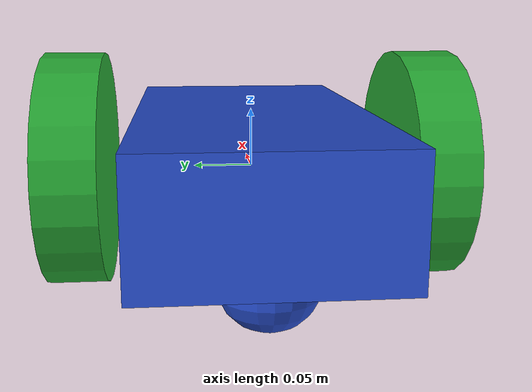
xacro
<?xml version='1.0'?>

<robot name="my_robot" xmlns:xacro="http://www.ros.org/wiki/xacro">

  <xacro:include filename="$(find my_robot)/urdf/my_robot.gazebo"/>

  <link name="robot_footprint"></link>

  <joint name="robot_footprint_joint" type="fixed">
    <origin xyz="0 0 0" rpy="0 0 0" />
    <parent link="robot_footprint"/>
    <child link="chassis" />
  </joint>

  <link name='chassis'>
    <pose>0 0 0.1 0 0 0</pose>

    <inertial>
      <mass value="15.0"/>
      <origin xyz="0.0 0 0" rpy=" 0 0 0"/>
      <inertia ixx="0.1" ixy="0" ixz="0" iyy="0.1" iyz="0" izz="0.1" />
    </inertial>

    <collision name='collision'>
      <origin xyz="0 0 0" rpy=" 0 0 0"/>
      <geometry>
        <box size=".4 .2 .1"/>
      </geometry>
    </collision>

    <visual name='chassis_visual'>
      <origin xyz="0 0 0" rpy=" 0 0 0"/>
      <geometry>
        <box size=".4 .2 .1"/>
      </geometry>
    </visual>

    <collision name='back_caster_collision'>
      <origin xyz="-0.15 0 -0.05" rpy=" 0 0 0"/>
      <geometry>
        <sphere radius="0.04"/>
      </geometry>
    </collision>

    <visual name='back_caster_visual'>
      <origin xyz="-0.15 0 -0.05" rpy=" 0 0 0"/>
      <geometry>
        <sphere radius="0.04"/>
      </geometry>
    </visual>

    <collision name='front_caster_collision'>
      <origin xyz="0.15 0 -0.05" rpy=" 0 0 0"/>
      <geometry>
        <sphere radius="0.04"/>
      </geometry>
    </collision>

    <visual name='front_caster_visual'>
      <origin xyz="0.15 0 -0.05" rpy=" 0 0 0"/>
      <geometry>
        <sphere radius="0.04"/>
      </geometry>
    </visual>
  </link>

  <link name="left_wheel">

    <pose>0 0.15 0.1 0 0 0</pose>

    <inertial>
      <mass value="5.0"/>
      <origin xyz="0 0 0" rpy=" 0 1.5707 1.5707"/>
      <inertia ixx="0.1" ixy="0" ixz="0" iyy="0.1" iyz="0" izz="0.1" />
    </inertial>

    <collison name='left_wheel_collison'>
      <origin xyz="0 0 0" rpy="0 1.5707 1.5707"/>
      <geometry>
        <cylinder radius="0.1" length="0.05"/>
      </geometry>
    </collison>

    <visual name='left_wheel_visual'>
      <origin xyz="0 0 0" rpy="0 1.5707 1.5707"/>
      <geometry>
        <cylinder radius="0.1" length="0.05"/>
      </geometry>
    </visual>
  </link>

  <joint type="continuous" name="left_wheel_hinge">
    <origin xyz="0 0.15 0" rpy="0 0 0"/>
    <child link="left_wheel"/>
    <parent link="chassis"/>
    <axis xyz="0 1 0" rpy="0 0 0"/>
    <limit effort="10000" velocity="1000"/>
    <dynamics damping="1.0" friction="1.0"/>
  </joint>

  <link name="right_wheel">

    <pose>0 -0.15 0.1 0 0 0</pose>

    <inertial>
      <mass value="5.0"/>
      <origin xyz="0.0 0 0" rpy=" 0 1.5707 1.5707"/>
      <inertia ixx="0.1" ixy="0" ixz="0" iyy="0.1" iyz="0" izz="0.1" />
    </inertial>

    <collison name='right_wheel_collison'>
      <origin xyz="0 0 0" rpy="0 1.5707 1.5707"/>
      <geometry>
        <cylinder radius="0.1" length="0.05"/>
      </geometry>
    </collison>

    <visual name='right_wheel_visual'>
      <origin xyz="0 0 0" rpy="0 1.5707 1.5707"/>
      <geometry>
        <cylinder radius="0.1" length="0.05"/>
      </geometry>
    </visual>
  </link>

  <joint type="continuous" name="right_wheel_hinge">
    <origin xyz="0 -0.15 0" rpy="0 0 0"/>
    <child link="right_wheel"/>
    <parent link="chassis"/>
    <axis xyz="0 1 0" rpy="0 0 0"/>
    <limit effort="10000" velocity="1000"/>
    <dynamics damping="1.0" friction="1.0"/>
  </joint>

  <gazebo reference='chassis'>
    <material>Gazebo/Blue</material>
  </gazebo>

  <gazebo reference='left_wheel'>
    <material>Gazebo/Green</material>
  </gazebo>

  <gazebo reference='right_wheel'>
    <material>Gazebo/Green</material>
  </gazebo>

</robot>
